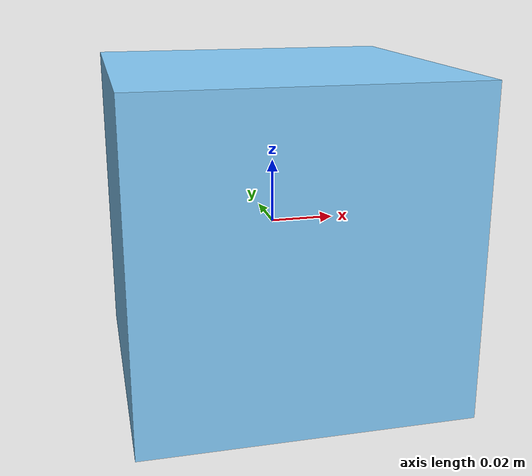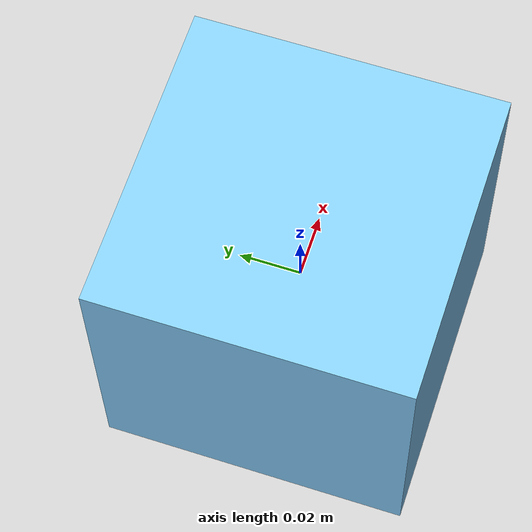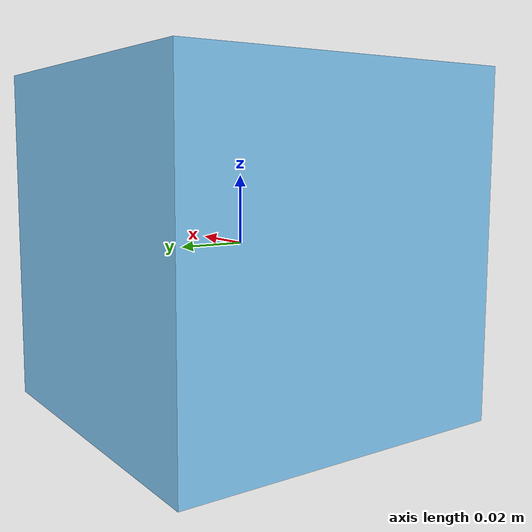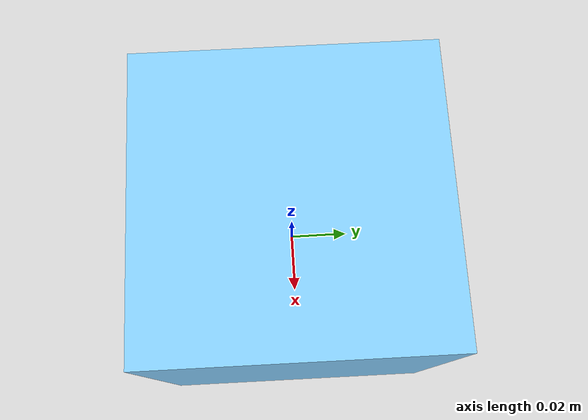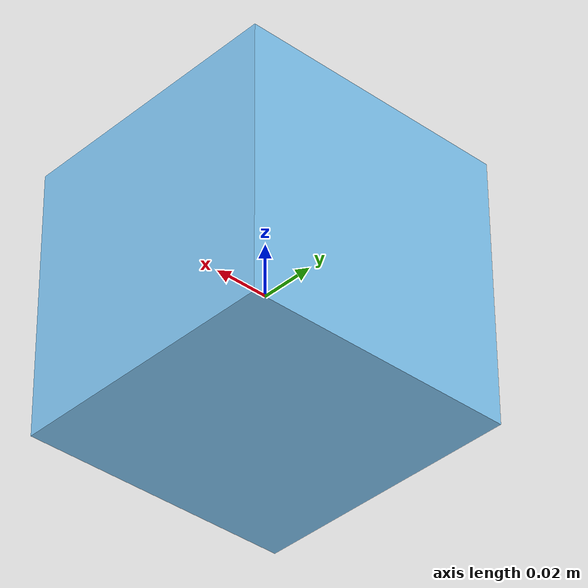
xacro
<?xml version="1.0" ?>
<robot xmlns:xacro="http://www.ros.org/wiki/xacro" name="car_camera">
    <xacro:property name="camera_length" value="0.1"/>
    <xacro:property name="car_camera_geometry">
        <geometry>
            <box size="${camera_length} ${camera_length} ${camera_length}"/>
        </geometry>
    </xacro:property>
    <material name="camera_color">
        <color rgba="0.52 0.8 0.98 1"/>
    </material>

    <gazebo reference="car_camera">
        <material>
            <diffuse> 0.52 0.8 0.98 1 </diffuse>
            <specular> 0.2 0.2 0.2 0  </specular>
            <emissive> 0 0 0 1 </emissive>
            <ambient> 0.114 0.16 0.196 1 </ambient>
        </material>
    </gazebo>

    <link name="car_camera">
        <inertial>
            <mass value="0.1"/>
            <origin xyz="0 0 0" rpy="0 0 0"/>
            <inertia ixx="0.000166667" ixy="0" ixz="0" iyy="0.000166667" iyz="0" izz="0.000166667"/>
        </inertial>
        <collision>
            <origin xyz="0 0 0" rpy="0 0 3.14"/>
            <xacro:insert_block name="car_camera_geometry"/>
        </collision>
        <visual>
            <origin xyz="0 0 0" rpy="0 0 3.14"/>
            <xacro:insert_block name="car_camera_geometry"/>
            <material name="camera_color"/>
        </visual>
    </link>
    <gazebo reference="car_camera">
        <sensor type="camera" name="car_camera">
            <update_rate>24</update_rate>
            <visualize>true</visualize>
            <topic>camera</topic>
            <camera name="head">
                <horizontal_fov>1.3962634</horizontal_fov>
                <image>
                    <width>640</width>
                    <height>480</height>
                    <format>R8G8B8</format>
                </image>
                <clip>
                    <near>0.02</near>
                    <far>300</far>
                </clip>
            </camera>
        </sensor>
    </gazebo>
</robot>
